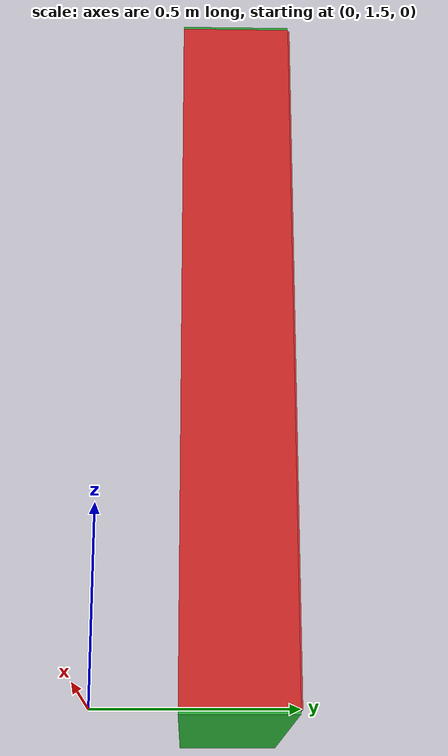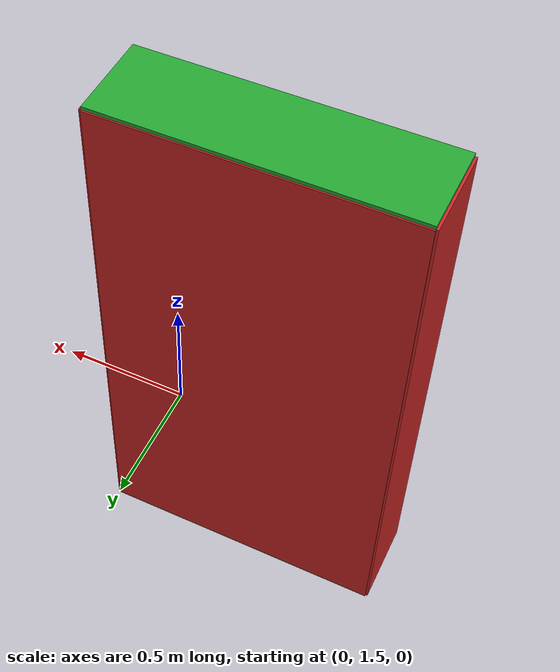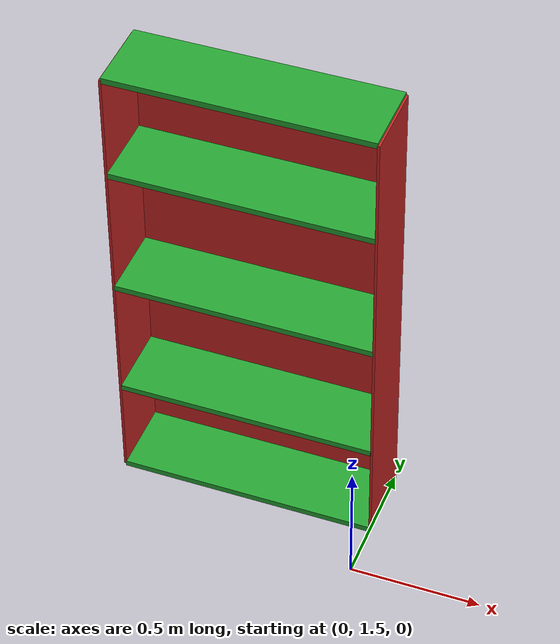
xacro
<?xml version="1.0"?>
<robot xmlns:xacro="http://www.ros.org/wiki/xacro"
       name="order_picking">

 <xacro:include filename="$(find cob_gazebo_worlds)/urdf/common.xacro" />
  <xacro:include filename="$(find cob_gazebo_worlds)/urdf/materials.urdf.xacro" />
  <xacro:include filename="$(find cob_gazebo_worlds)/urdf/order_picking/common1.xacro" />

 	<!-- property list -->
	<property name="workcell_height" value="0.023"/>
	<property name="workcell_length" value="0.995"/>
	<property name="workcell_width" value="0.29"/>
	<property name="workcell_totalheight" value="1.865"/>
	<property name="workcell_thickness" value="0.01"/>

 <xacro:macro name="order_picking" params="name">

    <gazebo>
      <plugin name="environment_gazebo_ros_control" filename="libgazebo_ros_control.so">
        <robotNamespace>world</robotNamespace>
        <robotParam>/world_description</robotParam>
      </plugin>
    </gazebo>

    <link name="world"/>

		<link name="back_wall">
			<xacro:box_inertial x="${workcell_length}" y="${workcell_thickness}" z="${workcell_totalheight}" mass="5.0">
				<origin xyz="0 0 0" rpy="0 0 0" />
			</xacro:box_inertial>
			<visual>
				<origin xyz="0 0 ${workcell_totalheight * 0.5}" rpy="0 0 0"/>
				<xacro:workcell_geometry length="${workcell_length}"
					width="${workcell_thickness}" height="${workcell_totalheight}">
				</xacro:workcell_geometry>
			</visual>
			<collision>
				<origin xyz="0 0 ${workcell_totalheight * 0.5}" rpy="0 0 0"/>
				<xacro:workcell_geometry length="${workcell_length}"
					 width="${workcell_thickness}" height="${workcell_totalheight}">
				</xacro:workcell_geometry>
			</collision>
		</link>
		<gazebo reference="back_wall">
			<material>IPA/Red</material>
		</gazebo>

		<joint name="workcell_to_backwall" type="fixed">
			<parent link="world"/>
			<child link="back_wall"/>
			<origin xyz="-0.5 2 0" rpy="0 0 0"/>
		</joint>
		<link name="left_wall">
			<xacro:box_inertial x="${workcell_width}" y="${workcell_thickness}" z="${workcell_totalheight}" mass="5.0">
				<origin xyz="0 0 0" rpy="0 0 0" />
			</xacro:box_inertial>
			<visual>
				<origin xyz="0 ${workcell_width * -0.5} ${workcell_totalheight * 0.5}" rpy="0 0 1.5708"/>
				<xacro:workcell_geometry length="${workcell_width}"
					width="${workcell_thickness}" height="${workcell_totalheight}">
				</xacro:workcell_geometry>
			</visual>
			<collision>
				<origin xyz="0 ${workcell_width * -0.5} ${workcell_totalheight * 0.5}" rpy="0 0 1.5708"/>
				<xacro:workcell_geometry length="${workcell_width}"
					 width="${workcell_thickness}" height="${workcell_totalheight}">
				</xacro:workcell_geometry>
			</collision>
		</link>
		<gazebo reference="left_wall">
			<material>IPA/Red</material>
		</gazebo>

		<joint name="workcell_to_leftwall" type="fixed">
			<parent link="world"/>
			<child link="left_wall"/>
			<origin xyz="-1 2 0" rpy="0 0 0"/>
		</joint>

		<link name="right_wall">
			<xacro:box_inertial x="${workcell_width}" y="${workcell_thickness}" z="${workcell_totalheight}" mass="5.0">
				<origin xyz="0 0 0" rpy="0 0 0" />
			</xacro:box_inertial>
			<visual>
				<origin xyz="0 ${workcell_width * -0.5} ${workcell_totalheight * 0.5}" rpy="0 0 1.5708"/>
				<xacro:workcell_geometry length="${workcell_width}"
					width="${workcell_thickness}" height="${workcell_totalheight}">
				</xacro:workcell_geometry>
			</visual>
			<collision>
				<origin xyz="0 ${workcell_width * -0.5} ${workcell_totalheight * 0.5}" rpy="0 0 1.5708"/>
				<xacro:workcell_geometry length="${workcell_width}"
					 width="${workcell_thickness}" height="${workcell_totalheight}">
				</xacro:workcell_geometry>
			</collision>
		</link>
		<gazebo reference="right_wall">
			<material>IPA/Red</material>
		</gazebo>

		<joint name="workcell_to_rightwall" type="fixed">
			<parent link="world"/>
			<child link="right_wall"/>
			<origin xyz="0 2 0" rpy="0 0 0"/>
		</joint>

	<xacro:workcell_element name="shelf1" parent="back_wall"
			 length="${workcell_length}" width="${workcell_width}" height="0.023" offset_x="0" offset_y="${workcell_width * -0.5}" offset_z="${workcell_totalheight}"/>
	<xacro:workcell_element name="shelf2" parent="back_wall"
			 length="${workcell_length}" width="${workcell_width}" height="0.023" offset_x="0" offset_y="${workcell_width * -0.5}" offset_z="${workcell_totalheight - 0.42}"/>
	<xacro:workcell_element name="shelf3" parent="back_wall"
			 length="${workcell_length}" width="${workcell_width}" height="0.023" offset_x="0" offset_y="${workcell_width * -0.5}" offset_z="${workcell_totalheight - 0.95}"/>
	<xacro:workcell_element name="shelf4" parent="back_wall"
			 length="${workcell_length}" width="${workcell_width}" height="0.023" offset_x="0" offset_y="${workcell_width * -0.5}" offset_z="${workcell_totalheight - 1.455}"/>
	<xacro:workcell_element name="shelf5" parent="back_wall"
			 length="${workcell_length}" width="${workcell_width}" height="0.023" offset_x="0" offset_y="${workcell_width * -0.5}" offset_z="0"/>

 </xacro:macro>

  <xacro:order_picking name="order_picking" />

</robot>

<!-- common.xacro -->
<robot xmlns:xacro="http://www.ros.org/wiki/xacro">

  <xacro:property name="M_PI" value="3.1415926535897931" />

  <!-- see https://secure.wikimedia.org/wikipedia/en/wiki/List_of_moment_of_inertia_tensors -->
  <xacro:macro name="sphere_inertial" params="radius mass *origin">
    <inertial>
      <mass value="${mass}" />
      <xacro:insert_block name="origin" />
      <inertia ixx="${0.4 * mass * radius * radius}" ixy="0.0" ixz="0.0"
        iyy="${0.4 * mass * radius * radius}" iyz="0.0"
        izz="${0.4 * mass * radius * radius}" />
    </inertial>
  </xacro:macro>

  <xacro:macro name="cylinder_inertial" params="radius length mass *origin">
    <inertial>
      <mass value="${mass}" />
      <xacro:insert_block name="origin" />
      <inertia ixx="${0.0833333 * mass * (3 * radius * radius + length * length)}" ixy="0.0" ixz="0.0"
        iyy="${0.0833333 * mass * (3 * radius * radius + length * length)}" iyz="0.0"
        izz="${0.5 * mass * radius * radius}" />
    </inertial>
  </xacro:macro>

  <xacro:macro name="box_inertial" params="x y z mass *origin">
    <inertial>
      <mass value="${mass}" />
      <xacro:insert_block name="origin" />
      <inertia ixx="${0.0833333 * mass * (y*y + z*z)}" ixy="0.0" ixz="0.0"
        iyy="${0.0833333 * mass * (x*x + z*z)}" iyz="0.0"
        izz="${0.0833333 * mass * (x*x + y*y)}" />
    </inertial>
  </xacro:macro>

  <xacro:macro name="default_inertial">
    <inertial>
      <mass value="0.01"/>
      <origin xyz="0 0 0"/>
      <inertia ixx="0.001" ixy="0.0" ixz="0.0" iyy="0.001" iyz="0.0" izz="0.001" />
    </inertial>
  </xacro:macro>

</robot>

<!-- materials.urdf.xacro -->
<robot>

  <material name="IPA/Blue">
    <color rgba="0.0 0.0 0.8 1.0"/>
  </material>

  <material name="IPA/Green">
    <color rgba="0.0 0.8 0.0 1.0"/>
  </material>

  <material name="IPA/Grey">
    <color rgba="0.7 0.7 0.7 1.0"/>
  </material>

  <material name="IPA/Grey2">
    <color rgba="0.81 0.81 0.81 1.0"/>
  </material>

  <material name="IPA/Red">
    <color rgba="0.8 0.0 0.0 1.0"/>
  </material>

  <material name="IPA/White">
    <color rgba="1.0 1.0 1.0 1.0"/>
  </material>

  <material name="IPA/Black">
    <color rgba="0.0 0.0 0.0 1.0"/>
  </material>

  <material name="IPA/Transparent">
    <color rgba="0.81 0.81 0.81 0.0"/>
  </material>

  <material name="IPA/LightBlue">
    <color rgba="0.624 0.698 0.858 1"/>
  </material>

</robot>

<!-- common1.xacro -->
<robot xmlns:xacro="http://www.ros.org/wiki/xacro">

	<!-- geometry macros -->
	<xacro:macro name="workcell_geometry" params="length width height">
			<geometry>
				<box size="${length} ${width} ${height}"/>
			</geometry>
	</xacro:macro>
	<xacro:macro name="workcell_element" params="name parent length width height offset_x offset_y offset_z">
		<link name="${name}">
			    <xacro:box_inertial x="${length}" y="${width}" z="${height}" mass="5.0">
					<origin xyz="0 0 0" rpy="0 0 0" />
				</xacro:box_inertial>
			<visual>
				<origin xyz="0 0 0" />
				<xacro:workcell_geometry length="${length}" width="${width}" height="${height}">

				</xacro:workcell_geometry>
			</visual>
			<collision>
				<origin xyz="0 0 0" />
				<xacro:workcell_geometry length="${length}" width="${width}" height="${height}">

				</xacro:workcell_geometry>
			</collision>
		</link>
		<gazebo reference="${name}">
			<material>IPA/Green</material>
		</gazebo>
		<joint name="${parent}_to_${name}" type="fixed">
			<parent link="${parent}"/>
			<child link="${name}"/>
			<origin xyz="${offset_x} ${offset_y} ${offset_z}" rpy="0 0 0"/>
		</joint>
	</xacro:macro>
	<!-- end of geometry macros -->

</robot>
